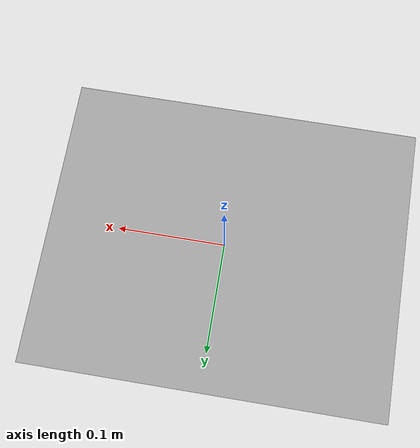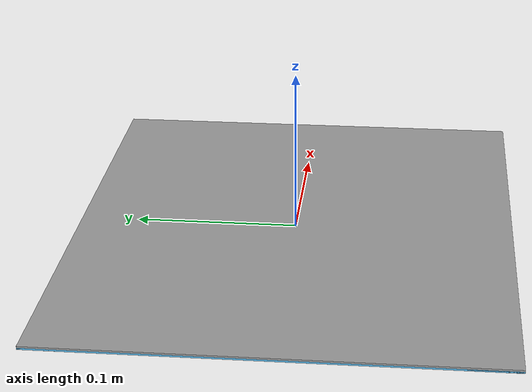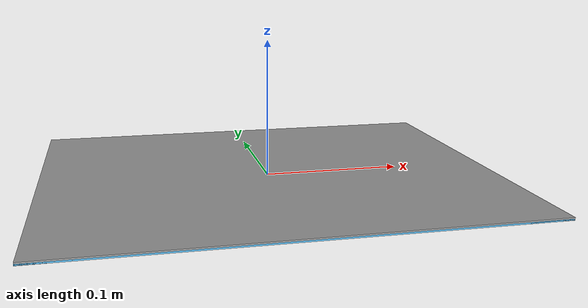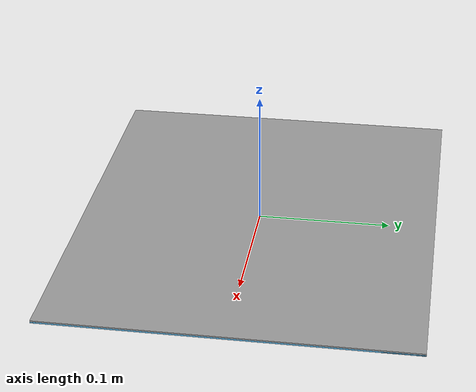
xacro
<?xml version="1.0"?>

<robot name="landmark" xmlns:xacro="http://www.ros.org/wiki/xacro">

    <!-- Chessboard cell size -->
    <xacro:property name="size" value="0.03"/>

    <!-- Chessboard size, have to be even numbers -->
    <xacro:property name="r" value="9"/>
    <xacro:property name="c" value="7"/>

    <material name="orange">
        <color rgba="1 0.5 0.01 1"/>
    </material>

    <gazebo>
        <static>true</static>
    </gazebo>

    <gazebo reference="back">
        <material>Gazebo/Grey</material>
    </gazebo>
    <gazebo reference="black">
        <material>Gazebo/Black</material>
    </gazebo>

    <xacro:property name="d" value="0.001"/>

    <!-- home made loop on columns -->
    <xacro:macro name="loop_c" params="x y color">
        <!-- white = odd x+y -->
        <xacro:if value="${(x+y) in [0,2,4,6,8,10,12,14,16,18,20,22,24,26]}">
            <xacro:if value="${color == 'black'}">
                <visual>
                    <origin xyz="${size*(-r/2+0.5+x)} ${size*(-c/2+0.5+y)} ${d/2}"/>
                    <geometry>
                        <box size="${size} ${size} ${d}"/>
                    </geometry>
                </visual>
            </xacro:if>
        </xacro:if>
        <!-- black = even x+y  -->
        <xacro:unless value="${(x+y) in [0,2,4,6,8,10,12,14,16,18,20,22,24,26]}">
            <xacro:if value="${color == 'white'}">
                <visual>
                    <origin xyz="${size*(-r/2+0.5+x)} ${size*(-c/2+0.5+y)} ${d/2}"/>
                    <geometry>
                        <box size="${size} ${size} ${d}"/>
                    </geometry>
                </visual>
            </xacro:if>
        </xacro:unless>

        <xacro:if value="${y}">
            <xacro:loop_c x="${x}" y="${y-1}" color="${color}"/>
        </xacro:if>
    </xacro:macro>

    <!-- home made loop on rows -->
    <xacro:macro name="loop_r" params="x color">
        <!-- loop on columns -->
        <xacro:loop_c x="${x}" y="${c-1}" color="${color}"/>
        <xacro:if value="${x}">
            <xacro:loop_r x="${x-1}" color="${color}"/>
        </xacro:if>
    </xacro:macro>

    <joint name="white" type="fixed">
        <parent link="back"/>
        <child link="white"/>
    </joint>

    <joint name="black" type="fixed">
        <parent link="back"/>
        <child link="black"/>
    </joint>

    <link name="back">

        <!-- Back of the landmark not to mess with small Z offset -->
        <visual>
            <origin xyz="0 0 ${3*d/2}"/>
            <geometry>
                <box size="${size*(r+2)} ${size*(c+2)} ${d}"/>
            </geometry>
        </visual>
        <inertial>
            <origin rpy="0 0 0" xyz="0 0 1.0"/>
            <mass value="1"/>
            <inertia ixx="1.0" ixy="0.0" ixz="0.0" iyy="1.0" iyz="0.0" izz="1.0"/>
        </inertial>
    </link>

    <link name="white">
        <gazebo reference="white">
        <material>
          <ambient>0.23828125 0.20703125 0.16015625 1</ambient>
          <specular>0.23828125 0.20703125 0.16015625 1</specular>
          <diffuse>0.23828125 0.20703125 0.16015625 1</diffuse>
        </material>
    </gazebo>
        <!-- Borders -->
        <visual>
            <origin xyz="${size*(r/2+0.5)} 0 ${d/2}"/>
            <geometry>
                <box size="${size} ${size*(c+2)} ${d}"/>
            </geometry>
        </visual>
        <visual>
            <origin xyz="${-size*(r/2+0.5)} 0 ${d/2}"/>
            <geometry>
                <box size="${size} ${size*(c+2)} ${d}"/>
            </geometry>
        </visual>
        <visual>
            <origin xyz="0 ${size*(c/2+0.5)} ${d/2}"/>
            <geometry>
                <box size="${size*(r+2)} ${size} ${d}"/>
            </geometry>
        </visual>
        <visual>
            <origin xyz="0 ${-size*(c/2+0.5)} ${d/2}"/>
            <geometry>
                <box size="${size*(r+2)} ${size} ${d}"/>
            </geometry>
        </visual>

        <!-- White cells -->
        <xacro:loop_r x="${r-1}" color="white"/>

        <inertial>
            <origin rpy="0 0 0" xyz="0 0 1.0"/>
            <mass value="1"/>
            <inertia ixx="1.0" ixy="0.0" ixz="0.0" iyy="1.0" iyz="0.0" izz="1.0"/>
        </inertial>
    </link>

    <link name="black">

        <inertial>
            <origin rpy="0 0 0" xyz="0 0 1.0"/>
            <mass value="1"/>
            <inertia ixx="1.0" ixy="0.0" ixz="0.0" iyy="1.0" iyz="0.0" izz="1.0"/>
        </inertial>

        <!-- Black cells -->
        <xacro:loop_r x="${r-1}" color="black"/>

    </link>

</robot>
